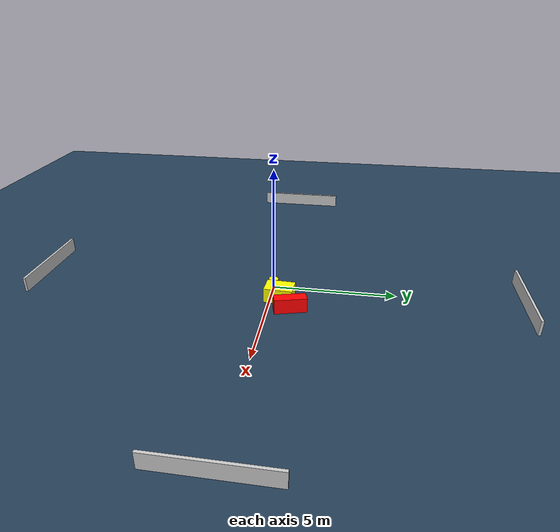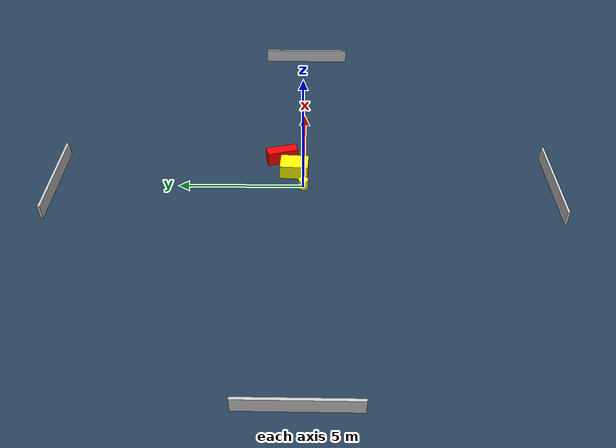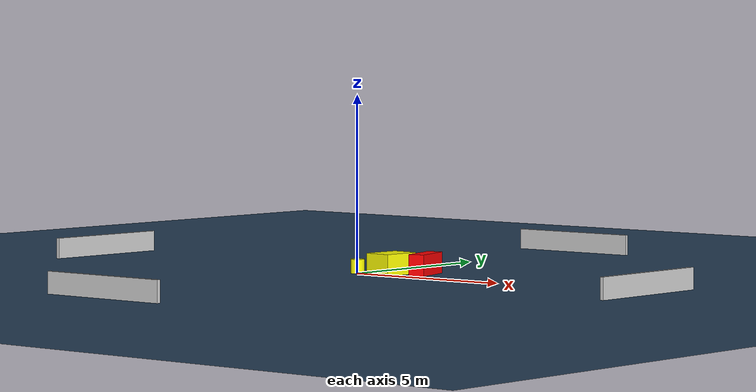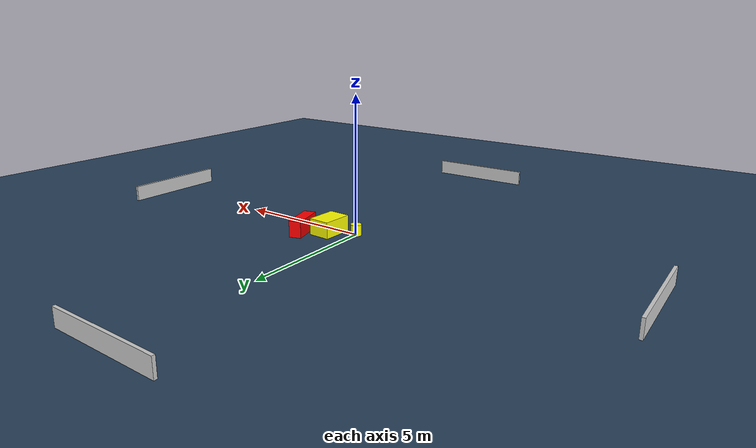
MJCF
<?xml version="1.0" ?>
<mujoco model="generated_environment">
  <option timestep="0.01" integrator="RK4" cone="elliptic"/>
  <default>
    <geom density="1"/>
  </default>
  <asset>
    <texture builtin="gradient" height="3072" name="skybox" rgb1="0.3 0.5 0.7" rgb2="0 0 0" type="skybox" width="512"/>
    <texture builtin="checker" height="300" name="groundplane" rgb1="0.2 0.3 0.4" rgb2="0.1 0.2 0.3" type="2d" width="300"/>
    <material name="groundplane" reflectance="0.2" texrepeat="5 5" texture="groundplane"/>
  </asset>
  <worldbody>
    <light dir="0 0 -1" directional="true" pos="0 0 1.5"/>
    <geom condim="3" friction="0.5 0.005 0.001" material="groundplane" name="floor" pos="0 0 0" size="0 0 0.05" type="plane"/>
    <body name="walls">
      <geom name="wall_1" condim="4" pos="-10.0 0.0 0.3" rgba="0.800000011920929 0.800000011920929 0.800000011920929 1.0" size="0.05 2.0 0.3" type="box"/>
      <geom name="wall_2" condim="4" pos="10.0 0.0 0.3" rgba="0.800000011920929 0.800000011920929 0.800000011920929 1.0" size="0.05 2.0 0.3" type="box"/>
      <geom name="wall_3" condim="4" pos="0.0 -10.0 0.3" rgba="0.800000011920929 0.800000011920929 0.800000011920929 1.0" size="2.0 0.05 0.3" type="box"/>
      <geom name="wall_4" condim="4" pos="0.0 10.0 0.3" rgba="0.800000011920929 0.800000011920929 0.800000011920929 1.0" size="2.0 0.05 0.3" type="box"/>
    </body>
    <body name="robot">
      <joint name="joint_x" type="slide" pos="0 0 0" axis="1 0 0"/>
      <joint name="joint_y" type="slide" pos="0 0 0" axis="0 1 0"/>
      <geom name="robot" type="cylinder" pos="0.0 0.0 0.2" size="0.2 0.2 0.0" mass="5.0" friction="1.0 0.005 0.0001" condim="4" rgba="1.0 1.0 0.0 1.0"/>
    </body>
    <body name="obstacle_1_movable">
      <geom name="obstacle_1_movable" condim="4" pos="0.9153368042144758 0.3865336527030313 0.3" euler="0 0 357.0191733439901" friction="0.0 0.005 0.001" rgba="1.0 1.0 0.0 1.0" size="0.4032821454521538 0.572713862749837 0.3" type="box" mass="0.1"/>
      <joint type="free"/>
    </body>
    <body name="obstacle_2_static">
      <geom name="obstacle_2_static" condim="4" pos="1.722091187566469 0.9140995703933338 0.3" euler="0 0 195.40399069974035" friction="0.0 0.005 0.001" rgba="1.0 0.0 0.0 1.0" size="0.2241660333636822 0.639262819101218 0.3" type="box"/>
    </body>
  </worldbody>
  <actuator>
    <motor name="actuator_x" joint="joint_x" gear="1" ctrlrange="-1 1"/>
    <motor name="actuator_y" joint="joint_y" gear="1" ctrlrange="-1 1"/>
  </actuator>
</mujoco>
